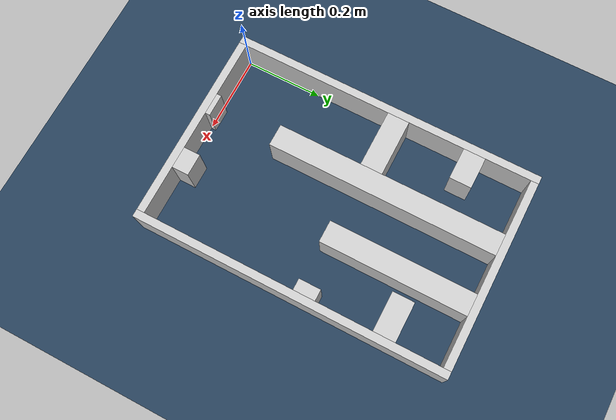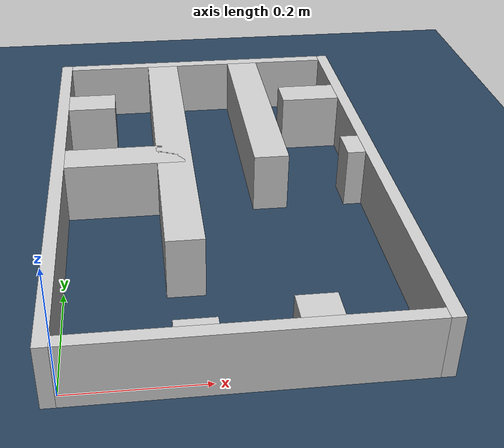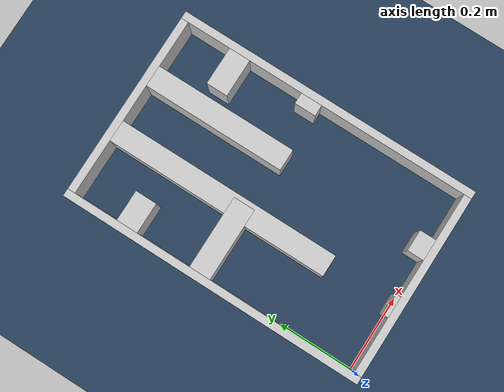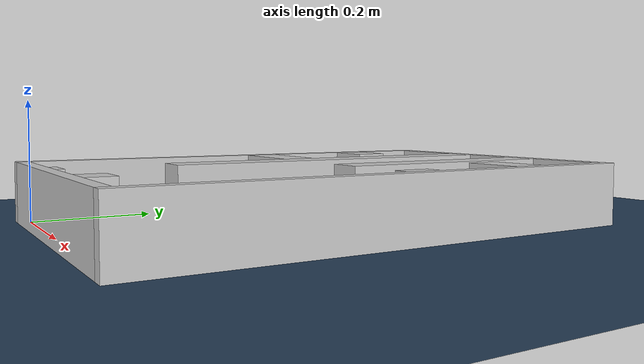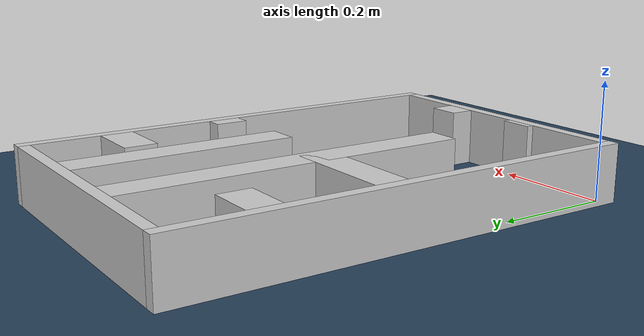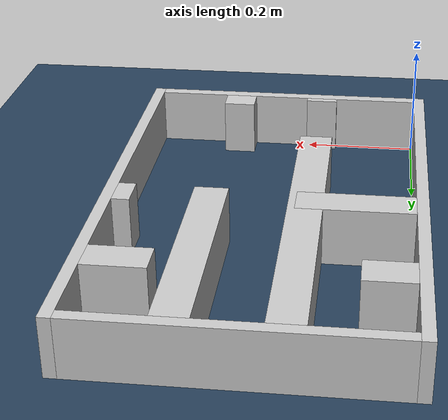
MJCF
<?xml version="1.0" ?>
<mujoco model="generated_real_template">
  <compiler angle="degree"/>
  <option timestep="0.002" integrator="implicitfast" iterations="100" cone="elliptic"/>
  <default>
    <geom density="1"/>
  </default>
  <asset>
    <texture builtin="gradient" height="3072" rgb1="0.3 0.5 0.7" rgb2="0 0 0" type="skybox" width="512"/>
    <texture builtin="checker" height="300" mark="edge" markrgb="0.8 0.8 0.8" name="groundplane" rgb1="0.2 0.3 0.4" rgb2="0.1 0.2 0.3" type="2d" width="300"/>
    <material name="groundplane" reflectance="0.2" texrepeat="5 5" texture="groundplane" texuniform="true"/>
  </asset>
  <worldbody>
    <light dir="0 0 -1" directional="true" pos="0 0 1.5"/>
    <geom name="floor" type="plane" condim="4" friction="0.5 0.005 0.001" material="groundplane" size="0 0 0.05"/>
    <body name="walls">
      <geom name="wall_boundary_left" type="box" condim="4" friction="1.0 0.005 0.0001" rgba="0.8 0.8 0.8 1" pos="-0.010000 0.387500 0.050000" euler="0 0 0.000000" size="0.010000 0.407500 0.050000"/>
      <geom name="wall_boundary_right" type="box" condim="4" friction="1.0 0.005 0.0001" rgba="0.8 0.8 0.8 1" pos="0.500000 0.387500 0.050000" euler="0 0 0.000000" size="0.010000 0.407500 0.050000"/>
      <geom name="wall_boundary_bottom" type="box" condim="4" friction="1.0 0.005 0.0001" rgba="0.8 0.8 0.8 1" pos="0.245000 -0.010000 0.050000" euler="0 0 0.000000" size="0.245000 0.010000 0.050000"/>
      <geom name="wall_boundary_top" type="box" condim="4" friction="1.0 0.005 0.0001" rgba="0.8 0.8 0.8 1" pos="0.245000 0.785000 0.050000" euler="0 0 0.000000" size="0.245000 0.010000 0.050000"/>
      <geom name="wall_inner_1_1" type="box" condim="4" friction="1.0 0.005 0.0001" rgba="0.8 0.8 0.8 1" pos="0.041193 0.628216 0.050000" euler="0 0 0.000000" size="0.041193 0.028500 0.050000"/>
      <geom name="wall_inner_1_2" type="box" condim="4" friction="1.0 0.005 0.0001" rgba="0.8 0.8 0.8 1" pos="0.439199 0.628216 0.050000" euler="0 0 0.000000" size="0.050801 0.028500 0.050000"/>
      <geom name="wall_inner_2_1" type="box" condim="4" friction="1.0 0.005 0.0001" rgba="0.8 0.8 0.8 1" pos="0.096834 0.424861 0.050000" euler="0 0 0.000000" size="0.096834 0.028500 0.050000"/>
      <geom name="wall_inner_2_2" type="box" condim="4" friction="1.0 0.005 0.0001" rgba="0.8 0.8 0.8 1" pos="0.475122 0.424861 0.050000" euler="0 0 0.000000" size="0.014878 0.028500 0.050000"/>
      <geom name="wall_inner_3_1" type="box" condim="4" friction="1.0 0.005 0.0001" rgba="0.8 0.8 0.8 1" pos="0.177000 0.006313 0.050000" euler="0 0 90.000000" size="0.006313 0.028500 0.050000"/>
      <geom name="wall_inner_3_2" type="box" condim="4" friction="1.0 0.005 0.0001" rgba="0.8 0.8 0.8 1" pos="0.177000 0.476744 0.050000" euler="0 0 90.000000" size="0.298256 0.028500 0.050000"/>
      <geom name="wall_inner_4_1" type="box" condim="4" friction="1.0 0.005 0.0001" rgba="0.8 0.8 0.8 1" pos="0.334339 0.021856 0.050000" euler="0 0 90.000000" size="0.021856 0.028500 0.050000"/>
      <geom name="wall_inner_4_2" type="box" condim="4" friction="1.0 0.005 0.0001" rgba="0.8 0.8 0.8 1" pos="0.334339 0.585846 0.050000" euler="0 0 90.000000" size="0.189154 0.028500 0.050000"/>
    </body>
  </worldbody>
</mujoco>
